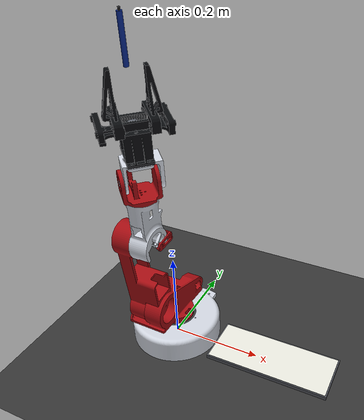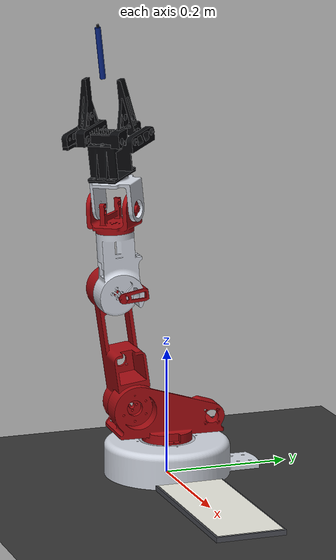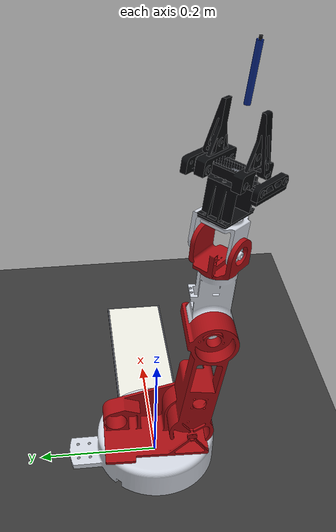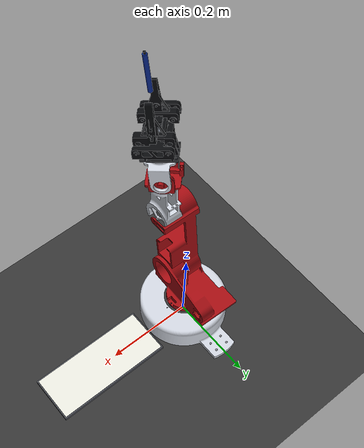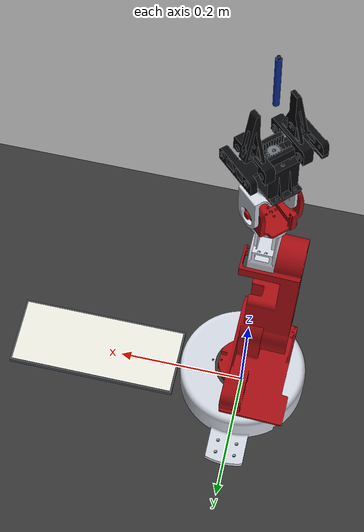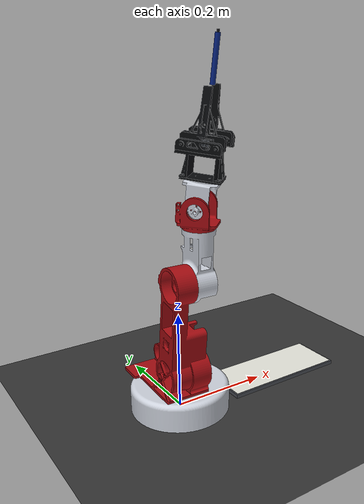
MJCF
<?xml version='1.0' encoding='UTF-8'?>
<mujoco model="simulation_arm_writer">
  <compiler angle="radian" meshdir="meshes" autolimits="true" inertiafromgeom="false" balanceinertia="true"/>
  <option timestep="0.002" gravity="0 0 -9.81" integrator="implicitfast" solver="Newton" iterations="50"/>
  <size njmax="1000" nconmax="200"/>
  <visual>
    <headlight ambient="0.45 0.45 0.45" diffuse="0.65 0.65 0.65" specular="0.1 0.1 0.1"/>
    <rgba haze="0.15 0.15 0.15 1"/>
    <global azimuth="135" elevation="-18" offwidth="1920" offheight="1080"/>
  </visual>
  <statistic center="0 0 0.22" extent="0.65"/>
  <asset>
    <texture name="grid_tex" type="2d" builtin="checker" width="512" height="512" rgb1="0.18 0.18 0.18" rgb2="0.24 0.24 0.24"/>
    <material name="floor_mat" texture="grid_tex" texrepeat="8 8" reflectance="0.12"/>
    <material name="white" rgba="0.82 0.84 0.88 1" specular="0.15" shininess="0.35"/>
    <material name="red" rgba="0.65 0.05 0.07 1" specular="0.25" shininess="0.35"/>
    <material name="black" rgba="0.035 0.04 0.05 1" specular="0.18" shininess="0.35"/>
    <material name="metal" rgba="0.42 0.44 0.48 1" specular="0.55" shininess="0.35"/>
    <mesh name="base_yaw" file="base_yaw.stl"/>
    <mesh name="gripper_base" file="gripper_base.stl"/>
    <mesh name="gripper_gear" file="gripper_gear.stl"/>
    <mesh name="gripper_lid" file="gripper_lid.stl"/>
    <mesh name="gripper_lock" file="gripper_lock.stl"/>
    <mesh name="gripper_finger" file="gripper_finger.stl"/>
    <mesh name="base_link" file="base_link.stl"/>
    <mesh name="upper_arm" file="upper_arm.stl"/>
    <mesh name="forearm" file="forearm.stl"/>
    <mesh name="wrist_pitch" file="wrist_pitch.stl"/>
    <mesh name="wrist_roll" file="wrist_roll.stl"/>
    <material name="pen_blue" rgba="0.04 0.16 0.55 1" specular="0.25" shininess="0.3"/>
    <material name="paper" rgba="0.92 0.92 0.88 1" specular="0.05" shininess="0.05"/>
    <material name="board_edge" rgba="0.30 0.31 0.34 1" specular="0.12" shininess="0.1"/>
  </asset>
  <default>
    <joint solimplimit="0.95 0.99 0.001" solreflimit="0.01 1"/>
    <geom contype="0" conaffinity="0" group="2"/>
  </default>
  <worldbody>
    <light pos="0 -0.5 1.2" dir="0 0.4 -1" directional="true" castshadow="true"/>
    <geom name="floor" type="plane" size="1.5 1.5 0.05" material="floor_mat" contype="1" conaffinity="1" group="0"/>
    <camera name="overview" pos="0.75 -0.85 0.55" xyaxes="0.75 0.66 0 -0.28 0.32 0.9"/>
    <body name="writing_board" mocap="true" pos="0.24 0 0.009">
      <geom name="writing_board_back" type="box" size="0.135 0.055 0.004" material="board_edge" contype="0" conaffinity="0" group="1"/>
      <geom name="writing_surface" type="box" pos="0 0 0.0045" size="0.132 0.052 0.0005" material="paper" contype="0" conaffinity="0" group="1"/>
      <site name="board_origin" pos="-0.127 0.047 0.0052" size="0.002" rgba="1 0.2 0.1 1" group="3"/>
    </body>
    <body name="base_link" pos="0 0 0.0520004" quat="1.326794897e-06 1 0 0">
      <inertial mass="0.270635" pos="0.000183794 -0.0132524 0.0216315" quat="0.7087649584 -0.02380499684 -0.02451883356 -0.7046164791" diaginertia="0.001012256063 0.001498725297 0.00234080864"/>
      <geom name="base_link_visual" type="mesh" mesh="base_link" pos="0 0 -0.003" quat="1 0 0 0" material="white"/>
      <body name="base_yaw_link" pos="-3.46945e-18 -2.1684e-19 -0.003" quat="9.525802466e-07 -0.7179559169 0.696088573 -9.235667662e-07">
        <joint name="J1_base_yaw" type="hinge" axis="-0 -0 -1" limited="true" range="-3.141592654 3.141592654" damping="2.0" armature="0.015" frictionloss="0.08" ref="0"/>
        <inertial mass="0.30865" pos="-0.0129542 0.00613593 0.0321149" quat="0.8969821834 -0.4250516279 0.09871839854 0.070772552" diaginertia="0.0003288975872 0.0008393933316 0.0009113830812"/>
        <geom name="base_yaw_link_visual" type="mesh" mesh="base_yaw" pos="0 0.03 -0.095" quat="1 0 0 0" material="red"/>
        <body name="upper_arm_link" pos="-0.0519837 0.02 0.0531817" quat="0.4999981634 0.5 -0.5000018366 -0.5">
          <joint name="J2_shoulder_pitch" type="hinge" axis="1 0 0" limited="true" range="-2.076438990 2.323561010" damping="4.0" armature="0.025" frictionloss="0.12" ref="0.12356101"/>
          <inertial mass="0.266867" pos="-0.0138639 0.0927123 0.0120694" quat="0.6970250097 0.04615803398 0.7018507725 0.1393953551" diaginertia="0.0001937808876 0.001600469515 0.001643327597"/>
          <geom name="upper_arm_link_visual" type="mesh" mesh="upper_arm" pos="-0.04 0.0676544 0.00534777" quat="0.7546045967 -0.6561797792 0 0" material="red"/>
          <body name="forearm_link" pos="-6.93889e-18 0.186179 0.0261041" quat="0.04920981773 -0.7053921879 0.04921499983 -0.7053921879">
            <joint name="J3_elbow_pitch" type="hinge" axis="0 0 -1" limited="true" range="-2.341460490 2.458539510" damping="3.2" armature="0.018" frictionloss="0.1" ref="0.05853951"/>
            <inertial mass="0.122559" pos="-0.00149317 -0.0318922 0.0166179" quat="0.7375978063 -0.02417086794 0.03996299349 0.6736231917" diaginertia="7.263448427e-05 0.0001990450903 0.0002306418254"/>
            <geom name="forearm_link_visual" type="mesh" mesh="forearm" pos="0 0 0" quat="0.999146758 0 0 -0.04130079946" material="white"/>
            <body name="wrist_pitch_link" pos="-0.00841817 -0.101652 0.02" quat="0.6440050881 0.6659083968 0.2378388683 -0.2919865175">
              <joint name="J4_wrist_pitch" type="hinge" axis="-0 -0 -1" limited="true" range="-2.602989970 0.997010030" damping="1.6" armature="0.008" frictionloss="0.05" ref="-0.80298997"/>
              <inertial mass="0.0583184" pos="-0.00190433 -0.000970614 0.0229023" quat="0.9981888661 -0.02528697261 0.05192396413 -0.01683622598" diaginertia="3.193313701e-05 5.233423974e-05 5.559742326e-05"/>
              <geom name="wrist_pitch_link_visual" type="mesh" mesh="wrist_pitch" pos="0 0 0" quat="1 0 0 0" material="red"/>
              <body name="wrist_roll_link" pos="-0.043 -6.245e-17 0.0375" quat="1.760176531e-12 1.326794897e-06 -1 -1.326794897e-06">
                <joint name="J5_wrist_roll" type="hinge" axis="1 0 0" limited="true" range="-3.066524394 3.216660914" damping="0.7" armature="0.004" frictionloss="0.025" ref="0.07506826"/>
                <inertial mass="0.0503237" pos="-0.0362955 0.00261762 -0.0313089" quat="0.7635140478 -0.6456956687 0.007173248481 0.008482136244" diaginertia="2.631867659e-05 4.054913621e-05 4.81323872e-05"/>
                <geom name="wrist_roll_link_visual" type="mesh" mesh="wrist_roll" pos="-0.04 0.00416578 -0.0498262" quat="0.9991304267 0.04169401046 0 0" material="white"/>
                <body name="gripper_lid_link" pos="-0.04 0.00416578 -0.0498262" quat="5.531970114e-08 1.325641139e-06 0.9991304172 0.04169423706">
                  <inertial mass="0.00985373" pos="1.67892e-18 -1.19203e-18 0.0015" quat="-0.7071067812 0 0 0.7071067812" diaginertia="1.78572e-06 4.20572e-06 5.97665e-06"/>
                  <geom name="gripper_lid_link_visual" type="mesh" mesh="gripper_lid" pos="0 -1.61176e-18 0" quat="1 0 0 0" material="black"/>
                  <body name="gripper_base_link" pos="0.015 -0.032 0.003" quat="1 -5.92235e-15 1.646255e-15 -7.069e-16">
                    <inertial mass="0.0751108" pos="-0.0216506 0.032 0.0410755" quat="0.9944026704 0.0002990429662 0.1056562192 -5.457944738e-05" diaginertia="5.37010225e-05 9.178629521e-05 0.0001050429823"/>
                    <geom name="gripper_base_link_visual" type="mesh" mesh="gripper_base" pos="-0.015 0.032 0.048" quat="1 0 0 0" material="black"/>
                    <site name="tcp" pos="-0.0165 0.032 0.153" size="0.006" rgba="0 1 0 1" group="3"/>
                    <body name="left_finger_link" pos="-0.0364149 0.004 0.063" quat="1.326794897e-06 -1 3.768040349e-15 4.031490001e-15">
                      <joint name="J6_left_finger" type="slide" axis="1 9.25186e-17 0" limited="true" range="-0.026985100 0.000039400" damping="1.0" armature="0.001" frictionloss="0.15" ref="-0.0149"/>
                      <inertial mass="0.0305906" pos="-0.00670823 -0.0309013 -0.0197347" quat="0.7721497956 0.1267234945 -0.6223202879 -0.02105489098" diaginertia="1.425623819e-05 2.538648585e-05 3.140267595e-05"/>
                      <geom name="left_finger_link_visual" type="mesh" mesh="gripper_finger" pos="-0.007 -0.028 -0.01" quat="1 0 0 0" material="black"/>
                    </body>
                    <body name="gripper_gear_link" pos="-0.015 0.032 0.053" quat="1.763111683e-12 1.326794897e-06 1 1.326794897e-06">
                      <inertial mass="0.00213728" pos="8.83048e-06 -5.34766e-05 -0.004" quat="0.6636145913 0 0 0.7480746448" diaginertia="6.680736995e-08 6.683103005e-08 1.10841e-07"/>
                      <geom name="gripper_gear_link_visual" type="mesh" mesh="gripper_gear" pos="8.03643e-06 -4.86679e-05 -0.008" quat="0.9997535724 0 0 -0.02219897634" material="metal"/>
                    </body>
                    <body name="gripper_lock_link" pos="0.0205 0.0355 0.053" quat="9.381839469e-07 -0.7071054825 0.7071080799 -9.381873905e-07">
                      <inertial mass="0.0110241" pos="0.00349682 -0.0178894 -0.00748554" quat="-0.1321246302 0.6946534843 0.6945742268 -0.1325377767" diaginertia="1.106078324e-06 5.374367388e-06 5.918304289e-06"/>
                      <geom name="gripper_lock_link_visual" type="mesh" mesh="gripper_lock" pos="0.0035 -0.025 -0.009" quat="0.7071054825 3.003781289e-23 -1.635509701e-17 0.7071080799" material="black"/>
                      <body name="right_finger_link" pos="0.0315 0.0170606 -0.01" quat="0.7071054825 -1.214858749e-14 -1.081895687e-15 0.7071080799">
                        <joint name="J6_right_finger" type="slide" axis="1 9.25186e-17 -0" limited="true" range="-0.026985100 0.000039400" damping="1.0" armature="0.001" frictionloss="0.15" ref="-0.0149"/>
                        <inertial mass="0.0305906" pos="-0.00670823 0.0250987 -0.0197347" quat="0.7721497956 0.1267234945 -0.6223202879 -0.02105489098" diaginertia="1.425623819e-05 2.538648585e-05 3.140267595e-05"/>
                        <geom name="right_finger_link_visual" type="mesh" mesh="gripper_finger" pos="-0.007 0.028 -0.01" quat="1 0 0 0" material="black"/>
                      </body>
                    </body>
                    <body name="virtual_pen" pos="-0.0165 0.032 0.153">
                      <geom name="virtual_pen_shaft" type="cylinder" pos="0 0 0.04" size="0.0045 0.04" material="pen_blue" contype="0" conaffinity="0" group="1" mass="0.001"/>
                      <geom name="virtual_pen_tip_geom" type="cylinder" pos="0 0 0.0825" size="0.0022 0.0025" rgba="0.08 0.08 0.09 1" contype="0" conaffinity="0" group="1" mass="0.0001"/>
                      <site name="pen_tip" pos="0 0 0.0875" size="0.0025" rgba="0 0.8 1 1" group="3"/>
                    </body>
                  </body>
                </body>
              </body>
            </body>
          </body>
        </body>
      </body>
    </body>
  </worldbody>
  <equality>
    <joint name="J6_finger_coupling" joint1="J6_right_finger" joint2="J6_left_finger" polycoef="0 1 0 0 0" solref="0.003 1" solimp="0.95 0.99 0.001"/>
  </equality>
  <actuator>
    <position name="J1_base_yaw_act" joint="J1_base_yaw" kp="80" kv="10" ctrllimited="true" ctrlrange="-3.141592654 3.141592654" forcelimited="true" forcerange="-30 30"/>
    <position name="J2_shoulder_pitch_act" joint="J2_shoulder_pitch" kp="140" kv="18" ctrllimited="true" ctrlrange="-2.076438990 2.323561010" forcelimited="true" forcerange="-30 30"/>
    <position name="J3_elbow_pitch_act" joint="J3_elbow_pitch" kp="110" kv="14" ctrllimited="true" ctrlrange="-2.341460490 2.458539510" forcelimited="true" forcerange="-18 18"/>
    <position name="J4_wrist_pitch_act" joint="J4_wrist_pitch" kp="70" kv="8" ctrllimited="true" ctrlrange="-2.602989970 0.997010030" forcelimited="true" forcerange="-8 8"/>
    <position name="J5_wrist_roll_act" joint="J5_wrist_roll" kp="35" kv="4" ctrllimited="true" ctrlrange="-3.066524394 3.216660914" forcelimited="true" forcerange="-4 4"/>
    <position name="J6_gripper_act" joint="J6_left_finger" kp="1600" kv="45" ctrllimited="true" ctrlrange="-0.026985100 0.000039400" forcelimited="true" forcerange="-60 60"/>
  </actuator>
  <sensor>
    <jointpos name="J1_base_yaw_pos" joint="J1_base_yaw"/>
    <jointvel name="J1_base_yaw_vel" joint="J1_base_yaw"/>
    <jointpos name="J2_shoulder_pitch_pos" joint="J2_shoulder_pitch"/>
    <jointvel name="J2_shoulder_pitch_vel" joint="J2_shoulder_pitch"/>
    <jointpos name="J3_elbow_pitch_pos" joint="J3_elbow_pitch"/>
    <jointvel name="J3_elbow_pitch_vel" joint="J3_elbow_pitch"/>
    <jointpos name="J4_wrist_pitch_pos" joint="J4_wrist_pitch"/>
    <jointvel name="J4_wrist_pitch_vel" joint="J4_wrist_pitch"/>
    <jointpos name="J5_wrist_roll_pos" joint="J5_wrist_roll"/>
    <jointvel name="J5_wrist_roll_vel" joint="J5_wrist_roll"/>
    <jointpos name="J6_left_finger_pos" joint="J6_left_finger"/>
    <jointvel name="J6_left_finger_vel" joint="J6_left_finger"/>
    <jointpos name="J6_right_finger_pos" joint="J6_right_finger"/>
    <jointvel name="J6_right_finger_vel" joint="J6_right_finger"/>
    <framepos name="tcp_position" objtype="site" objname="tcp"/>
    <framequat name="tcp_orientation" objtype="site" objname="tcp"/>
    <framepos name="pen_tip_position" objtype="site" objname="pen_tip"/>
    <framequat name="pen_tip_orientation" objtype="site" objname="pen_tip"/>
  </sensor>
  <keyframe>
    <key name="home_vertical" qpos="0 0 0 0 0 0 0" ctrl="0 0 0 0 0 0"/>
    <key name="ready" qpos="0 -0.32643899 0.90853951 -1.20298997 0.07506826 -0.0069 -0.0069" ctrl="0 -0.32643899 0.90853951 -1.20298997 0.07506826 -0.0069"/>
    <key name="folded" qpos="0 -0.87643899 1.80853951 -1.45298997 0.07506826 -0.0229 -0.0229" ctrl="0 -0.87643899 1.80853951 -1.45298997 0.07506826 -0.0229"/>
  </keyframe>
</mujoco>
